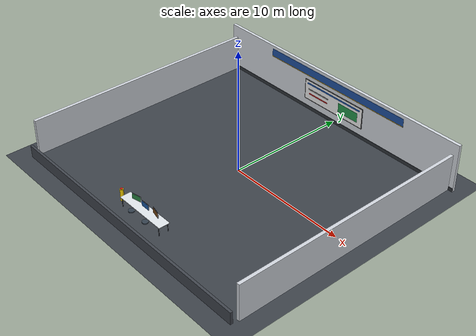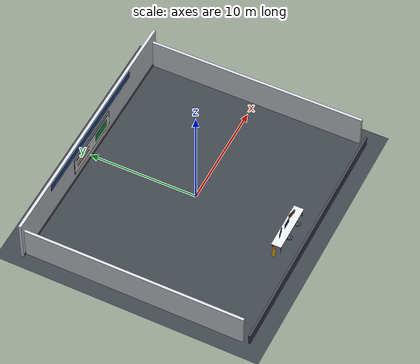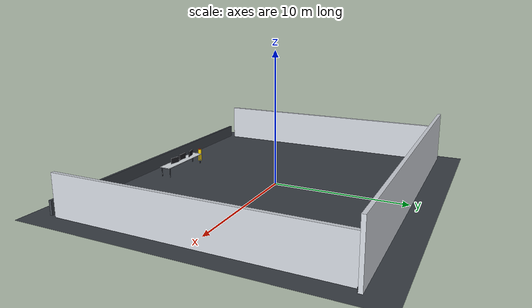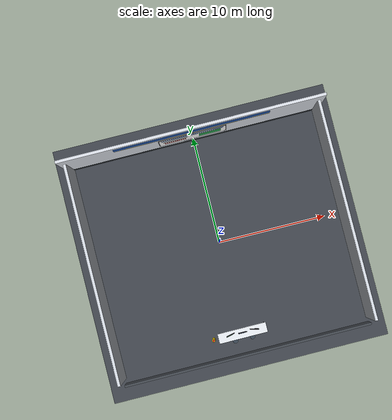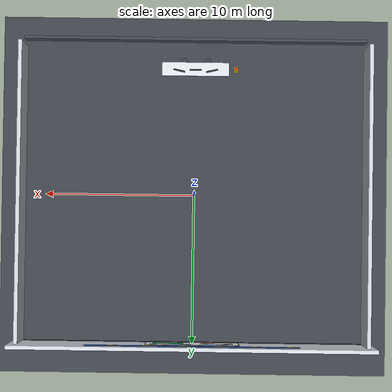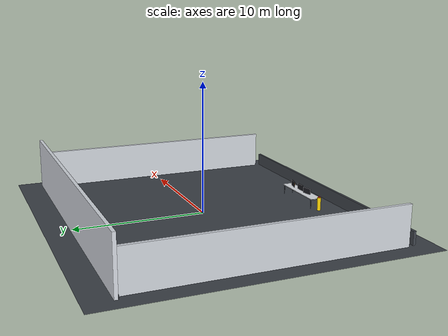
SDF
<sdf version="1.9">
 <world name="bicopter_world">
  <model name="lab_facility">
   <static>true</static>
   <link name="link">
    <collision name="floor_col">
     <geometry><plane><normal>0 0 1</normal><size>26 24</size></plane></geometry>
     <surface><friction><ode><mu>1.0</mu><mu2>1.0</mu2></ode></friction></surface>
    </collision>
    <visual name="floor_epoxy">
     <geometry><plane><normal>0 0 1</normal><size>26 24</size></plane></geometry>
     <material>
      <ambient>0.22 0.24 0.27 1</ambient>
      <diffuse>0.24 0.26 0.29 1</diffuse>
      <specular>0.20 0.20 0.20 1</specular>
     </material>
    </visual>
    <collision name="wall_n_col">
     <pose>0 10.0 2.0 0 0 0</pose>
     <geometry><box><size>24.0 0.25 4.0</size></box></geometry>
    </collision>
    <visual name="wall_n_v">
     <pose>0 10.0 2.0 0 0 0</pose>
     <geometry><box><size>24.0 0.25 4.0</size></box></geometry>
     <material><ambient>0.84 0.86 0.89 1</ambient><diffuse>0.84 0.86 0.89 1</diffuse></material>
    </visual>
    <visual name="wall_n_kick">
     <pose>0 9.86 0.15 0 0 0</pose>
     <geometry><box><size>24.0 0.04 0.3</size></box></geometry>
     <material><ambient>0.18 0.20 0.22 1</ambient><diffuse>0.18 0.20 0.22 1</diffuse></material>
    </visual>
    <visual name="banner_bg">
     <pose>0 9.84 3.4 0 0 0</pose>
     <geometry><box><size>14.0 0.02 0.7</size></box></geometry>
     <material><ambient>0.12 0.32 0.65 1</ambient><diffuse>0.12 0.32 0.65 1</diffuse></material>
    </visual>
    <visual name="banner_stripe">
     <pose>0 9.83 3.08 0 0 0</pose>
     <geometry><box><size>14.0 0.01 0.05</size></box></geometry>
     <material><ambient>0.95 0.75 0.1 1</ambient><diffuse>0.95 0.75 0.1 1</diffuse></material>
    </visual>
    <visual name="wb_frame">
     <pose>0 9.84 1.8 0 0 0</pose>
     <geometry><box><size>6.2 0.04 1.8</size></box></geometry>
     <material><ambient>0.3 0.3 0.3 1</ambient><diffuse>0.3 0.3 0.3 1</diffuse></material>
    </visual>
    <visual name="wb_surface">
     <pose>0 9.82 1.8 0 0 0</pose>
     <geometry><box><size>6.08 0.02 1.68</size></box></geometry>
     <material><ambient>0.96 0.96 0.96 1</ambient><diffuse>0.96 0.96 0.96 1</diffuse></material>
    </visual>
    <visual name="wb_header">
     <pose>0 9.80 2.4 0 0 0</pose>
     <geometry><box><size>5.6 0.01 0.12</size></box></geometry>
     <material><ambient>0.1 0.35 0.75 1</ambient><diffuse>0.1 0.35 0.75 1</diffuse></material>
    </visual>
    <visual name="wb_f1">
     <pose>-1.6 9.80 1.9 0 0 0</pose>
     <geometry><box><size>2.2 0.01 0.10</size></box></geometry>
     <material><ambient>0.15 0.15 0.15 1</ambient><diffuse>0.15 0.15 0.15 1</diffuse></material>
    </visual>
    <visual name="wb_f2">
     <pose>-1.6 9.80 1.5 0 0 0</pose>
     <geometry><box><size>2.0 0.01 0.10</size></box></geometry>
     <material><ambient>0.85 0.1 0.1 1</ambient><diffuse>0.85 0.1 0.1 1</diffuse></material>
    </visual>
    <visual name="wb_diagram">
     <pose>1.6 9.80 1.7 0 0 0</pose>
     <geometry><box><size>2.0 0.01 0.8</size></box></geometry>
     <material><ambient>0.15 0.6 0.3 1</ambient><diffuse>0.15 0.6 0.3 1</diffuse></material>
    </visual>
    <collision name="wall_e_col">
     <pose>11.5 0 1.5 0 0 0</pose>
     <geometry><box><size>0.25 20.0 3.0</size></box></geometry>
    </collision>
    <visual name="wall_e_v">
     <pose>11.5 0 1.5 0 0 0</pose>
     <geometry><box><size>0.25 20.0 3.0</size></box></geometry>
     <material><ambient>0.82 0.84 0.87 1</ambient><diffuse>0.82 0.84 0.87 1</diffuse></material>
    </visual>
    <collision name="wall_w_col">
     <pose>-11.5 0 1.5 0 0 0</pose>
     <geometry><box><size>0.25 20.0 3.0</size></box></geometry>
    </collision>
    <visual name="wall_w_v">
     <pose>-11.5 0 1.5 0 0 0</pose>
     <geometry><box><size>0.25 20.0 3.0</size></box></geometry>
     <material><ambient>0.82 0.84 0.87 1</ambient><diffuse>0.82 0.84 0.87 1</diffuse></material>
    </visual>
    <collision name="rail_s_col">
     <pose>0 -10.5 0.5 0 0 0</pose>
     <geometry><box><size>23.0 0.2 1.0</size></box></geometry>
    </collision>
    <visual name="rail_s_v">
     <pose>0 -10.5 0.5 0 0 0</pose>
     <geometry><box><size>23.0 0.2 1.0</size></box></geometry>
     <material><ambient>0.25 0.27 0.30 1</ambient><diffuse>0.25 0.27 0.30 1</diffuse></material>
    </visual>
   </link>
  </model>
  <model name="ground_control_center">
   <static>true</static>
   <pose>0 -8.5 0 0 0 0</pose>
   <link name="link">
    <collision name="desk_top_col">
     <pose>0 0 0.75 0 0 0</pose>
     <geometry><box><size>4.5 0.9 0.05</size></box></geometry>
    </collision>
    <visual name="desk_top_v">
     <pose>0 0 0.75 0 0 0</pose>
     <geometry><box><size>4.5 0.9 0.05</size></box></geometry>
     <material><ambient>0.88 0.90 0.92 1</ambient><diffuse>0.88 0.90 0.92 1</diffuse></material>
    </visual>
    <visual name="leg_1">
     <pose>2.1 0.38 0.36 0 0 0</pose>
     <geometry><cylinder><radius>0.035</radius><length>0.72</length></cylinder></geometry>
     <material><ambient>0.2 0.22 0.25 1</ambient><diffuse>0.2 0.22 0.25 1</diffuse></material>
    </visual>
    <visual name="leg_2">
     <pose>-2.1 0.38 0.36 0 0 0</pose>
     <geometry><cylinder><radius>0.035</radius><length>0.72</length></cylinder></geometry>
     <material><ambient>0.2 0.22 0.25 1</ambient><diffuse>0.2 0.22 0.25 1</diffuse></material>
    </visual>
    <visual name="leg_3">
     <pose>2.1 -0.38 0.36 0 0 0</pose>
     <geometry><cylinder><radius>0.035</radius><length>0.72</length></cylinder></geometry>
     <material><ambient>0.2 0.22 0.25 1</ambient><diffuse>0.2 0.22 0.25 1</diffuse></material>
    </visual>
    <visual name="leg_4">
     <pose>-2.1 -0.38 0.36 0 0 0</pose>
     <geometry><cylinder><radius>0.035</radius><length>0.72</length></cylinder></geometry>
     <material><ambient>0.2 0.22 0.25 1</ambient><diffuse>0.2 0.22 0.25 1</diffuse></material>
    </visual>
    <visual name="m1_body">
     <pose>0 0.1 1.1 0 0 0</pose>
     <geometry><box><size>0.80 0.04 0.45</size></box></geometry>
     <material><ambient>0.1 0.1 0.12 1</ambient><diffuse>0.1 0.1 0.12 1</diffuse></material>
    </visual>
    <visual name="m1_screen">
     <pose>0 0.075 1.1 0 0 0</pose>
     <geometry><box><size>0.76 0.01 0.41</size></box></geometry>
     <material>
      <ambient>0.1 0.35 0.65 1</ambient>
      <diffuse>0.1 0.35 0.65 1</diffuse>
      <emissive>0.1 0.45 0.8 1</emissive>
     </material>
    </visual>
    <visual name="m2_body">
     <pose>-1.1 0.15 1.1 0 0 0.22</pose>
     <geometry><box><size>0.80 0.04 0.45</size></box></geometry>
     <material><ambient>0.1 0.1 0.12 1</ambient><diffuse>0.1 0.1 0.12 1</diffuse></material>
    </visual>
    <visual name="m2_screen">
     <pose>-1.09 0.125 1.1 0 0 0.22</pose>
     <geometry><box><size>0.76 0.01 0.41</size></box></geometry>
     <material>
      <ambient>0.15 0.5 0.25 1</ambient>
      <diffuse>0.15 0.5 0.25 1</diffuse>
      <emissive>0.1 0.55 0.3 1</emissive>
     </material>
    </visual>
    <visual name="m3_body">
     <pose>1.1 0.15 1.1 0 0 -0.22</pose>
     <geometry><box><size>0.80 0.04 0.45</size></box></geometry>
     <material><ambient>0.1 0.1 0.12 1</ambient><diffuse>0.1 0.1 0.12 1</diffuse></material>
    </visual>
    <visual name="m3_screen">
     <pose>1.09 0.125 1.1 0 0 -0.22</pose>
     <geometry><box><size>0.76 0.01 0.41</size></box></geometry>
     <material>
      <ambient>0.5 0.3 0.1 1</ambient>
      <diffuse>0.5 0.3 0.1 1</diffuse>
      <emissive>0.6 0.35 0.1 1</emissive>
     </material>
    </visual>
    <visual name="seat_1">
     <pose>-0.8 -0.55 0.5 0 0 0</pose>
     <geometry><cylinder><radius>0.24</radius><length>0.08</length></cylinder></geometry>
     <material><ambient>0.2 0.25 0.3 1</ambient><diffuse>0.2 0.25 0.3 1</diffuse></material>
    </visual>
    <visual name="seat_2">
     <pose>0.8 -0.55 0.5 0 0 0</pose>
     <geometry><cylinder><radius>0.24</radius><length>0.08</length></cylinder></geometry>
     <material><ambient>0.2 0.25 0.3 1</ambient><diffuse>0.2 0.25 0.3 1</diffuse></material>
    </visual>
    <collision name="estop_col">
     <pose>-2.7 0 0.5 0 0 0</pose>
     <geometry><cylinder><radius>0.14</radius><length>1.0</length></cylinder></geometry>
    </collision>
    <visual name="estop_ped">
     <pose>-2.7 0 0.5 0 0 0</pose>
     <geometry><cylinder><radius>0.14</radius><length>1.0</length></cylinder></geometry>
     <material><ambient>0.95 0.8 0 1</ambient><diffuse>0.95 0.8 0 1</diffuse></material>
    </visual>
    <visual name="estop_btn">
     <pose>-2.7 0 1.03 0 0 0</pose>
     <geometry><cylinder><radius>0.09</radius><length>0.06</length></cylinder></geometry>
     <material>
      <ambient>0.9 0.1 0.1 1</ambient>
      <diffuse>0.9 0.1 0.1 1</diffuse>
      <emissive>0.7 0.05 0.05 1</emissive>
     </material>
    </visual>
   </link>
  </model>
 </world>
</sdf>
